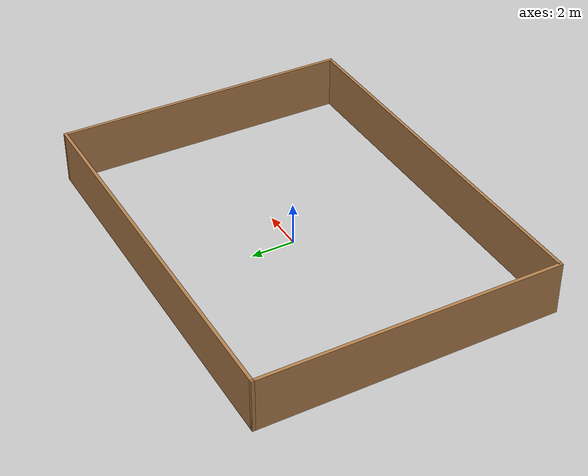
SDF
<?xml version='1.0'?>
<sdf version='1.7'>
  <model name='wall'>
    <pose>0.004877 -0.205634 0 0 -0 0</pose>
    <link name='Wall_16'>
      <collision name='Wall_16_Collision'>
        <geometry>
          <box>
            <size>18.5 0.15 2.5</size>
          </box>
        </geometry>
        <pose>0 0 1.25 0 -0 0</pose>
      </collision>
      <visual name='Wall_16_Visual'>
        <pose>0 0 1.25 0 -0 0</pose>
        <geometry>
          <box>
            <size>18.5 0.15 2.5</size>
          </box>
        </geometry>
        <material>
          <script>
            <uri>file://media/materials/scripts/gazebo.material</uri>
            <name>Gazebo/Wood</name>
          </script>
          <ambient>0.760784 0.662745 0.627451 1</ambient>
        </material>
        <meta>
          <layer>0</layer>
        </meta>
      </visual>
      <pose>0 6.925 0 0 -0 0</pose>
    </link>
    <link name='Wall_17'>
      <collision name='Wall_17_Collision'>
        <geometry>
          <box>
            <size>14 0.15 2.5</size>
          </box>
        </geometry>
        <pose>0 0 1.25 0 -0 0</pose>
      </collision>
      <visual name='Wall_17_Visual'>
        <pose>0 0 1.25 0 -0 0</pose>
        <geometry>
          <box>
            <size>14 0.15 2.5</size>
          </box>
        </geometry>
        <material>
          <script>
            <uri>file://media/materials/scripts/gazebo.material</uri>
            <name>Gazebo/Wood</name>
          </script>
          <ambient>1 1 1 1</ambient>
        </material>
        <meta>
          <layer>0</layer>
        </meta>
      </visual>
      <pose>9.175 0 0 0 -0 -1.5708</pose>
    </link>
    <link name='Wall_21'>
      <collision name='Wall_21_Collision'>
        <geometry>
          <box>
            <size>18.5 0.15 2.5</size>
          </box>
        </geometry>
        <pose>0 0 1.25 0 -0 0</pose>
      </collision>
      <visual name='Wall_21_Visual'>
        <pose>0 0 1.25 0 -0 0</pose>
        <geometry>
          <box>
            <size>18.5 0.15 2.5</size>
          </box>
        </geometry>
        <material>
          <script>
            <uri>file://media/materials/scripts/gazebo.material</uri>
            <name>Gazebo/Wood</name>
          </script>
          <ambient>1 1 1 1</ambient>
        </material>
        <meta>
          <layer>0</layer>
        </meta>
      </visual>
      <pose>0 -6.925 0 0 -0 3.14159</pose>
    </link>
    <link name='Wall_23'>
      <collision name='Wall_23_Collision'>
        <geometry>
          <box>
            <size>14 0.15 2.5</size>
          </box>
        </geometry>
        <pose>0 0 1.25 0 -0 0</pose>
      </collision>
      <visual name='Wall_23_Visual'>
        <pose>0 0 1.25 0 -0 0</pose>
        <geometry>
          <box>
            <size>14 0.15 2.5</size>
          </box>
        </geometry>
        <material>
          <script>
            <uri>file://media/materials/scripts/gazebo.material</uri>
            <name>Gazebo/Wood</name>
          </script>
          <ambient>1 1 1 1</ambient>
        </material>
        <meta>
          <layer>0</layer>
        </meta>
      </visual>
      <pose>-9.175 0 0 0 -0 -1.5708</pose>
    </link>
    <static>1</static>
  </model>
</sdf>
